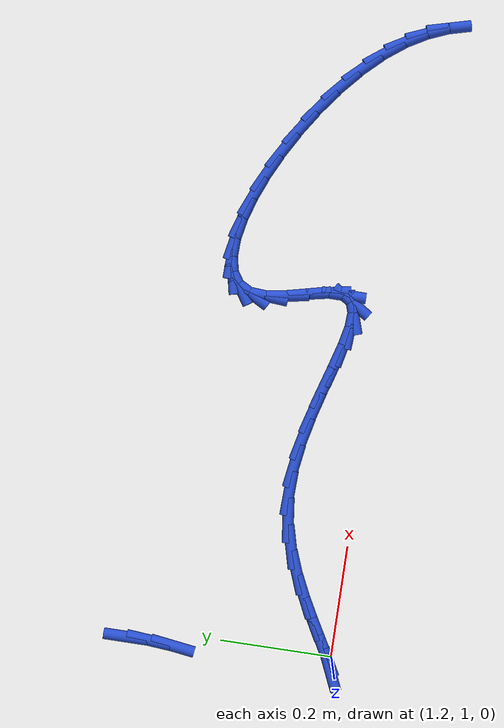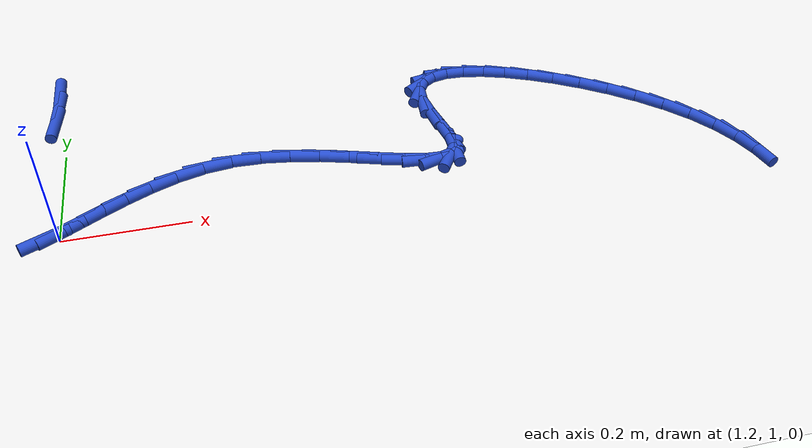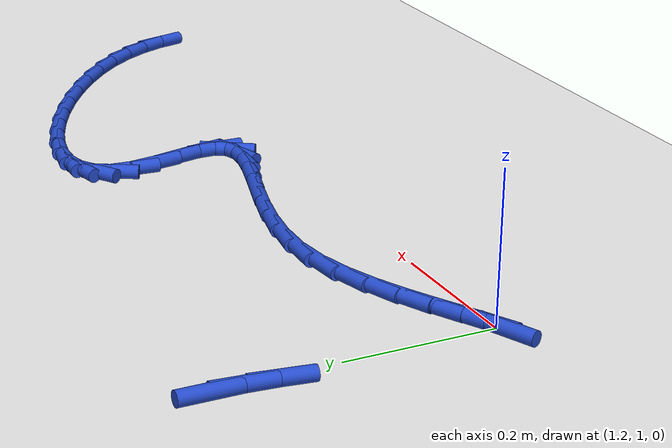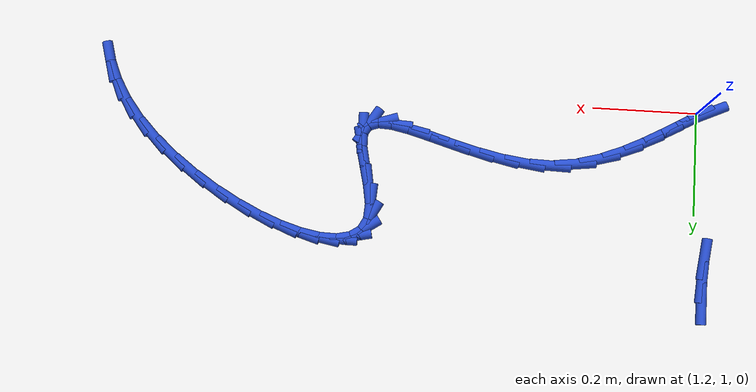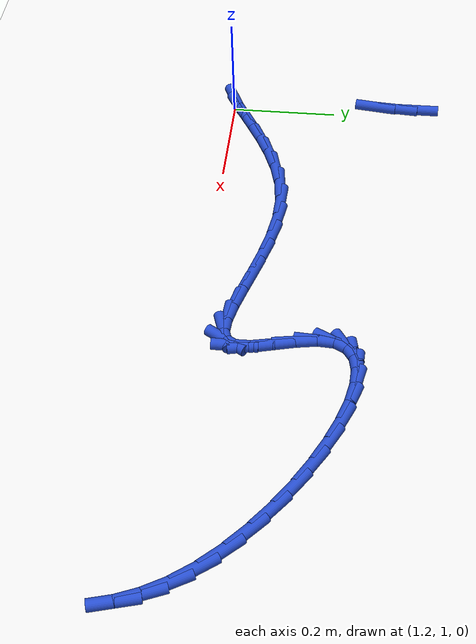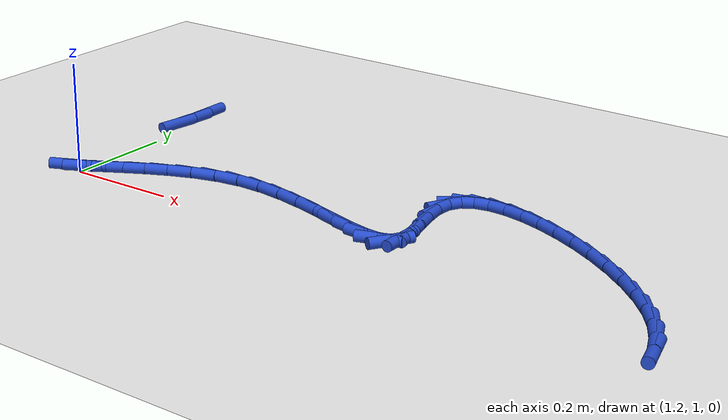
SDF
<sdf version="1.6">
 <world name="default">
  <model name="ground_plane">
   <static>1</static>
   <link name="link">
    <collision name="collision">
     <geometry><plane><normal>0 0 1</normal><size>100 100</size></plane></geometry>
     <surface><friction><ode><mu>100</mu><mu2>50</mu2></ode></friction></surface>
    </collision>
    <visual name="visual">
     <cast_shadows>0</cast_shadows>
     <geometry><plane><normal>0 0 1</normal><size>100 100</size></plane></geometry>
     <material>
      <script><uri>file://media/materials/scripts/gazebo.material</uri><name>Gazebo/WhiteGlow</name></script>
     </material>
    </visual>
   </link>
  </model>
  <model name="line">
   <link name="link_59">
    <pose>1.1833542707400957 1.3675502109636808 0.01 0 1.57 1.5687435442339484</pose>
    <collision name="collision">
     <geometry><cylinder><radius>0.01</radius><length>0.08</length></cylinder></geometry>
    </collision>
    <visual name="visual">
     <material>
      <script><name>Gazebo/Blue</name><uri>file://media/materials/scripts/gazebo.material</uri></script>
     </material>
     <geometry><cylinder><radius>0.01</radius><length>0.08</length></cylinder></geometry>
    </visual>
   </link>
   <link name="link_60">
    <pose>1.1832705447374465 1.3267636772912266 0.01 0 1.57 1.4860865900125153</pose>
    <collision name="collision">
     <geometry><cylinder><radius>0.01</radius><length>0.08</length></cylinder></geometry>
    </collision>
    <visual name="visual">
     <material>
      <script><name>Gazebo/Blue</name><uri>file://media/materials/scripts/gazebo.material</uri></script>
     </material>
     <geometry><cylinder><radius>0.01</radius><length>0.08</length></cylinder></geometry>
    </visual>
   </link>
   <link name="link_61">
    <pose>1.1795605325885823 1.2830717238694571 0.01 0 1.57 1.433139103271464</pose>
    <collision name="collision">
     <geometry><cylinder><radius>0.01</radius><length>0.08</length></cylinder></geometry>
    </collision>
    <visual name="visual">
     <material>
      <script><name>Gazebo/Blue</name><uri>file://media/materials/scripts/gazebo.material</uri></script>
     </material>
     <geometry><cylinder><radius>0.01</radius><length>0.08</length></cylinder></geometry>
    </visual>
   </link>
   <link name="link_71">
    <pose>1.1792217830529335 0.9993016676941432 0.01 0 1.57 0.41999487995042717</pose>
    <collision name="collision">
     <geometry><cylinder><radius>0.01</radius><length>0.08</length></cylinder></geometry>
    </collision>
    <visual name="visual">
     <material>
      <script><name>Gazebo/Blue</name><uri>file://media/materials/scripts/gazebo.material</uri></script>
     </material>
     <geometry><cylinder><radius>0.01</radius><length>0.08</length></cylinder></geometry>
    </visual>
   </link>
   <link name="link_72">
    <pose>1.2028808810101816 1.0098670260185412 0.01 0 1.57 0.5003953882442692</pose>
    <collision name="collision">
     <geometry><cylinder><radius>0.01</radius><length>0.08</length></cylinder></geometry>
    </collision>
    <visual name="visual">
     <material>
      <script><name>Gazebo/Blue</name><uri>file://media/materials/scripts/gazebo.material</uri></script>
     </material>
     <geometry><cylinder><radius>0.01</radius><length>0.08</length></cylinder></geometry>
    </visual>
   </link>
   <link name="link_73">
    <pose>1.2315399144276273 1.0255382437845144 0.01 0 1.57 0.5167305637071714</pose>
    <collision name="collision">
     <geometry><cylinder><radius>0.01</radius><length>0.08</length></cylinder></geometry>
    </collision>
    <visual name="visual">
     <material>
      <script><name>Gazebo/Blue</name><uri>file://media/materials/scripts/gazebo.material</uri></script>
     </material>
     <geometry><cylinder><radius>0.01</radius><length>0.08</length></cylinder></geometry>
    </visual>
   </link>
   <link name="link_74">
    <pose>1.2646926836332768 1.0443765980793738 0.01 0 1.57 0.4953626063585196</pose>
    <collision name="collision">
     <geometry><cylinder><radius>0.01</radius><length>0.08</length></cylinder></geometry>
    </collision>
    <visual name="visual">
     <material>
      <script><name>Gazebo/Blue</name><uri>file://media/materials/scripts/gazebo.material</uri></script>
     </material>
     <geometry><cylinder><radius>0.01</radius><length>0.08</length></cylinder></geometry>
    </visual>
   </link>
   <link name="link_75">
    <pose>1.3018329889551352 1.0644433659904284 0.01 0 1.57 0.44467643170085613</pose>
    <collision name="collision">
     <geometry><cylinder><radius>0.01</radius><length>0.08</length></cylinder></geometry>
    </collision>
    <visual name="visual">
     <material>
      <script><name>Gazebo/Blue</name><uri>file://media/materials/scripts/gazebo.material</uri></script>
     </material>
     <geometry><cylinder><radius>0.01</radius><length>0.08</length></cylinder></geometry>
    </visual>
   </link>
   <link name="link_76">
    <pose>1.3424546307212075 1.0837998246049887 0.01 0 1.57 0.3659630775760741</pose>
    <collision name="collision">
     <geometry><cylinder><radius>0.01</radius><length>0.08</length></cylinder></geometry>
    </collision>
    <visual name="visual">
     <material>
      <script><name>Gazebo/Blue</name><uri>file://media/materials/scripts/gazebo.material</uri></script>
     </material>
     <geometry><cylinder><radius>0.01</radius><length>0.08</length></cylinder></geometry>
    </visual>
   </link>
   <link name="link_77">
    <pose>1.3860514092594995 1.1005072510103648 0.01 0 1.57 0.25726513294996456</pose>
    <collision name="collision">
     <geometry><cylinder><radius>0.01</radius><length>0.08</length></cylinder></geometry>
    </collision>
    <visual name="visual">
     <material>
      <script><name>Gazebo/Blue</name><uri>file://media/materials/scripts/gazebo.material</uri></script>
     </material>
     <geometry><cylinder><radius>0.01</radius><length>0.08</length></cylinder></geometry>
    </visual>
   </link>
   <link name="link_78">
    <pose>1.4321171248980162 1.1126269222938658 0.01 0 1.57 0.11614313005797457</pose>
    <collision name="collision">
     <geometry><cylinder><radius>0.01</radius><length>0.08</length></cylinder></geometry>
    </collision>
    <visual name="visual">
     <material>
      <script><name>Gazebo/Blue</name><uri>file://media/materials/scripts/gazebo.material</uri></script>
     </material>
     <geometry><cylinder><radius>0.01</radius><length>0.08</length></cylinder></geometry>
    </visual>
   </link>
   <link name="link_79">
    <pose>1.4801439257995148 1.1182301222411746 0.01 0 1.57 -0.033196139831334286</pose>
    <collision name="collision">
     <geometry><cylinder><radius>0.01</radius><length>0.08</length></cylinder></geometry>
    </collision>
    <visual name="visual">
     <material>
      <script><name>Gazebo/Blue</name><uri>file://media/materials/scripts/gazebo.material</uri></script>
     </material>
     <geometry><cylinder><radius>0.01</radius><length>0.08</length></cylinder></geometry>
    </visual>
   </link>
   <link name="link_80">
    <pose>1.5294249336474692 1.1165935818225015 0.01 0 1.57 -0.14582118160427973</pose>
    <collision name="collision">
     <geometry><cylinder><radius>0.01</radius><length>0.08</length></cylinder></geometry>
    </collision>
    <visual name="visual">
     <material>
      <script><name>Gazebo/Blue</name><uri>file://media/materials/scripts/gazebo.material</uri></script>
     </material>
     <geometry><cylinder><radius>0.01</radius><length>0.08</length></cylinder></geometry>
    </visual>
   </link>
   <link name="link_81">
    <pose>1.5788672064581106 1.109332310625039 0.01 0 1.57 -0.22323469884871947</pose>
    <collision name="collision">
     <geometry><cylinder><radius>0.01</radius><length>0.08</length></cylinder></geometry>
    </collision>
    <visual name="visual">
     <material>
      <script><name>Gazebo/Blue</name><uri>file://media/materials/scripts/gazebo.material</uri></script>
     </material>
     <geometry><cylinder><radius>0.01</radius><length>0.08</length></cylinder></geometry>
    </visual>
   </link>
   <link name="link_82">
    <pose>1.627333512267396 1.0983295701400206 0.01 0 1.57 -0.2706481111614177</pose>
    <collision name="collision">
     <geometry><cylinder><radius>0.01</radius><length>0.08</length></cylinder></geometry>
    </collision>
    <visual name="visual">
     <material>
      <script><name>Gazebo/Blue</name><uri>file://media/materials/scripts/gazebo.material</uri></script>
     </material>
     <geometry><cylinder><radius>0.01</radius><length>0.08</length></cylinder></geometry>
    </visual>
   </link>
   <link name="link_83">
    <pose>1.673686619111285 1.085468621858681 0.01 0 1.57 -0.2894354718659591</pose>
    <collision name="collision">
     <geometry><cylinder><radius>0.01</radius><length>0.08</length></cylinder></geometry>
    </collision>
    <visual name="visual">
     <material>
      <script><name>Gazebo/Blue</name><uri>file://media/materials/scripts/gazebo.material</uri></script>
     </material>
     <geometry><cylinder><radius>0.01</radius><length>0.08</length></cylinder></geometry>
    </visual>
   </link>
   <link name="link_84">
    <pose>1.7167892950257353 1.072632727272254 0.01 0 1.57 -0.2751002932898341</pose>
    <collision name="collision">
     <geometry><cylinder><radius>0.01</radius><length>0.08</length></cylinder></geometry>
    </collision>
    <visual name="visual">
     <material>
      <script><name>Gazebo/Blue</name><uri>file://media/materials/scripts/gazebo.material</uri></script>
     </material>
     <geometry><cylinder><radius>0.01</radius><length>0.08</length></cylinder></geometry>
    </visual>
   </link>
   <link name="link_85">
    <pose>1.7555043080467057 1.0617051478719732 0.01 0 1.57 -0.2117798265458431</pose>
    <collision name="collision">
     <geometry><cylinder><radius>0.01</radius><length>0.08</length></cylinder></geometry>
    </collision>
    <visual name="visual">
     <material>
      <script><name>Gazebo/Blue</name><uri>file://media/materials/scripts/gazebo.material</uri></script>
     </material>
     <geometry><cylinder><radius>0.01</radius><length>0.08</length></cylinder></geometry>
    </visual>
   </link>
   <link name="link_86">
    <pose>1.7886944262101536 1.0545691451490733 0.01 0 1.57 -0.05502450538432444</pose>
    <collision name="collision">
     <geometry><cylinder><radius>0.01</radius><length>0.08</length></cylinder></geometry>
    </collision>
    <visual name="visual">
     <material>
      <script><name>Gazebo/Blue</name><uri>file://media/materials/scripts/gazebo.material</uri></script>
     </material>
     <geometry><cylinder><radius>0.01</radius><length>0.08</length></cylinder></geometry>
    </visual>
   </link>
   <link name="link_87">
    <pose>1.8152224175520382 1.0531079805947876 0.01 0 1.57 0.31472100855886515</pose>
    <collision name="collision">
     <geometry><cylinder><radius>0.01</radius><length>0.08</length></cylinder></geometry>
    </collision>
    <visual name="visual">
     <material>
      <script><name>Gazebo/Blue</name><uri>file://media/materials/scripts/gazebo.material</uri></script>
     </material>
     <geometry><cylinder><radius>0.01</radius><length>0.08</length></cylinder></geometry>
    </visual>
   </link>
   <link name="link_88">
    <pose>1.833951050108317 1.05920491570035 0.01 0 1.57 1.0084752885668766</pose>
    <collision name="collision">
     <geometry><cylinder><radius>0.01</radius><length>0.08</length></cylinder></geometry>
    </collision>
    <visual name="visual">
     <material>
      <script><name>Gazebo/Blue</name><uri>file://media/materials/scripts/gazebo.material</uri></script>
     </material>
     <geometry><cylinder><radius>0.01</radius><length>0.08</length></cylinder></geometry>
    </visual>
   </link>
   <link name="link_89">
    <pose>1.8437430919149496 1.0747432119569953 0.01 0 1.57 -1.570244699357077</pose>
    <collision name="collision">
     <geometry><cylinder><radius>0.01</radius><length>0.08</length></cylinder></geometry>
    </collision>
    <visual name="visual">
     <material>
      <script><name>Gazebo/Blue</name><uri>file://media/materials/scripts/gazebo.material</uri></script>
     </material>
     <geometry><cylinder><radius>0.01</radius><length>0.08</length></cylinder></geometry>
    </visual>
   </link>
   <link name="link_90">
    <pose>1.8437284400649254 1.1013043427736537 0.01 0 1.57 -1.3699065568556508</pose>
    <collision name="collision">
     <geometry><cylinder><radius>0.01</radius><length>0.08</length></cylinder></geometry>
    </collision>
    <visual name="visual">
     <material>
      <script><name>Gazebo/Blue</name><uri>file://media/materials/scripts/gazebo.material</uri></script>
     </material>
     <geometry><cylinder><radius>0.01</radius><length>0.08</length></cylinder></geometry>
    </visual>
   </link>
   <link name="link_91">
    <pose>1.8365644429345256 1.1364846562792463 0.01 0 1.57 -1.337619118816288</pose>
    <collision name="collision">
     <geometry><cylinder><radius>0.01</radius><length>0.08</length></cylinder></geometry>
    </collision>
    <visual name="visual">
     <material>
      <script><name>Gazebo/Blue</name><uri>file://media/materials/scripts/gazebo.material</uri></script>
     </material>
     <geometry><cylinder><radius>0.01</radius><length>0.08</length></cylinder></geometry>
    </visual>
   </link>
   <link name="link_92">
    <pose>1.8274021259321707 1.1750632780295514 0.01 0 1.57 -1.409867639404159</pose>
    <collision name="collision">
     <geometry><cylinder><radius>0.01</radius><length>0.08</length></cylinder></geometry>
    </collision>
    <visual name="visual">
     <material>
      <script><name>Gazebo/Blue</name><uri>file://media/materials/scripts/gazebo.material</uri></script>
     </material>
     <geometry><cylinder><radius>0.01</radius><length>0.08</length></cylinder></geometry>
    </visual>
   </link>
   <link name="link_93">
    <pose>1.8214450611518227 1.211759969153138 0.01 0 1.57 1.4981029156011794</pose>
    <collision name="collision">
     <geometry><cylinder><radius>0.01</radius><length>0.08</length></cylinder></geometry>
    </collision>
    <visual name="visual">
     <material>
      <script><name>Gazebo/Blue</name><uri>file://media/materials/scripts/gazebo.material</uri></script>
     </material>
     <geometry><cylinder><radius>0.01</radius><length>0.08</length></cylinder></geometry>
    </visual>
   </link>
   <link name="link_94">
    <pose>1.823614747900868 1.2415544661330131 0.01 0 1.57 1.0688806396478794</pose>
    <collision name="collision">
     <geometry><cylinder><radius>0.01</radius><length>0.08</length></cylinder></geometry>
    </collision>
    <visual name="visual">
     <material>
      <script><name>Gazebo/Blue</name><uri>file://media/materials/scripts/gazebo.material</uri></script>
     </material>
     <geometry><cylinder><radius>0.01</radius><length>0.08</length></cylinder></geometry>
    </visual>
   </link>
   <link name="link_95">
    <pose>1.835239980798698 1.2627377595649472 0.01 0 1.57 0.5829889249186541</pose>
    <collision name="collision">
     <geometry><cylinder><radius>0.01</radius><length>0.08</length></cylinder></geometry>
    </collision>
    <visual name="visual">
     <material>
      <script><name>Gazebo/Blue</name><uri>file://media/materials/scripts/gazebo.material</uri></script>
     </material>
     <geometry><cylinder><radius>0.01</radius><length>0.08</length></cylinder></geometry>
    </visual>
   </link>
   <link name="link_96">
    <pose>1.8551735175851796 1.2758829055114531 0.01 0 1.57 0.2086075971744396</pose>
    <collision name="collision">
     <geometry><cylinder><radius>0.01</radius><length>0.08</length></cylinder></geometry>
    </collision>
    <visual name="visual">
     <material>
      <script><name>Gazebo/Blue</name><uri>file://media/materials/scripts/gazebo.material</uri></script>
     </material>
     <geometry><cylinder><radius>0.01</radius><length>0.08</length></cylinder></geometry>
    </visual>
   </link>
   <link name="link_97">
    <pose>1.8822191234600614 1.2816081145256175 0.01 0 1.57 -0.032648295764393986</pose>
    <collision name="collision">
     <geometry><cylinder><radius>0.01</radius><length>0.08</length></cylinder></geometry>
    </collision>
    <visual name="visual">
     <material>
      <script><name>Gazebo/Blue</name><uri>file://media/materials/scripts/gazebo.material</uri></script>
     </material>
     <geometry><cylinder><radius>0.01</radius><length>0.08</length></cylinder></geometry>
    </visual>
   </link>
   <link name="link_98">
    <pose>1.915180563623089 1.2805315971605271 0.01 0 1.57 -0.19033834912369366</pose>
    <collision name="collision">
     <geometry><cylinder><radius>0.01</radius><length>0.08</length></cylinder></geometry>
    </collision>
    <visual name="visual">
     <material>
      <script><name>Gazebo/Blue</name><uri>file://media/materials/scripts/gazebo.material</uri></script>
     </material>
     <geometry><cylinder><radius>0.01</radius><length>0.08</length></cylinder></geometry>
    </visual>
   </link>
   <link name="link_99">
    <pose>1.9528616032740107 1.2732715639692678 0.01 0 1.57 -0.3017560197152243</pose>
    <collision name="collision">
     <geometry><cylinder><radius>0.01</radius><length>0.08</length></cylinder></geometry>
    </collision>
    <visual name="visual">
     <material>
      <script><name>Gazebo/Blue</name><uri>file://media/materials/scripts/gazebo.material</uri></script>
     </material>
     <geometry><cylinder><radius>0.01</radius><length>0.08</length></cylinder></geometry>
    </visual>
   </link>
   <link name="link_100">
    <pose>1.9940660076125736 1.260446225504927 0.01 0 1.57 -0.3876116265774691</pose>
    <collision name="collision">
     <geometry><cylinder><radius>0.01</radius><length>0.08</length></cylinder></geometry>
    </collision>
    <visual name="visual">
     <material>
      <script><name>Gazebo/Blue</name><uri>file://media/materials/scripts/gazebo.material</uri></script>
     </material>
     <geometry><cylinder><radius>0.01</radius><length>0.08</length></cylinder></geometry>
    </visual>
   </link>
   <link name="link_101">
    <pose>2.037597541838525 1.2426737923205904 0.01 0 1.57 -0.4595211818228255</pose>
    <collision name="collision">
     <geometry><cylinder><radius>0.01</radius><length>0.08</length></cylinder></geometry>
    </collision>
    <visual name="visual">
     <material>
      <script><name>Gazebo/Blue</name><uri>file://media/materials/scripts/gazebo.material</uri></script>
     </material>
     <geometry><cylinder><radius>0.01</radius><length>0.08</length></cylinder></geometry>
    </visual>
   </link>
   <link name="link_102">
    <pose>2.0822599711516125 1.2205724749693452 0.01 0 1.57 -0.52467187864082</pose>
    <collision name="collision">
     <geometry><cylinder><radius>0.01</radius><length>0.08</length></cylinder></geometry>
    </collision>
    <visual name="visual">
     <material>
      <script><name>Gazebo/Blue</name><uri>file://media/materials/scripts/gazebo.material</uri></script>
     </material>
     <geometry><cylinder><radius>0.01</radius><length>0.08</length></cylinder></geometry>
    </visual>
   </link>
   <link name="link_103">
    <pose>2.1268570607515835 1.1947604840042778 0.01 0 1.57 -0.5882279944977992</pose>
    <collision name="collision">
     <geometry><cylinder><radius>0.01</radius><length>0.08</length></cylinder></geometry>
    </collision>
    <visual name="visual">
     <material>
      <script><name>Gazebo/Blue</name><uri>file://media/materials/scripts/gazebo.material</uri></script>
     </material>
     <geometry><cylinder><radius>0.01</radius><length>0.08</length></cylinder></geometry>
    </visual>
   </link>
   <link name="link_104">
    <pose>2.1701925758381853 1.1658560299784744 0.01 0 1.57 -0.6546853620527718</pose>
    <collision name="collision">
     <geometry><cylinder><radius>0.01</radius><length>0.08</length></cylinder></geometry>
    </collision>
    <visual name="visual">
     <material>
      <script><name>Gazebo/Blue</name><uri>file://media/materials/scripts/gazebo.material</uri></script>
     </material>
     <geometry><cylinder><radius>0.01</radius><length>0.08</length></cylinder></geometry>
    </visual>
   </link>
   <link name="link_105">
    <pose>2.211070281611163 1.134477323445022 0.01 0 1.57 -0.7288448051973511</pose>
    <collision name="collision">
     <geometry><cylinder><radius>0.01</radius><length>0.08</length></cylinder></geometry>
    </collision>
    <visual name="visual">
     <material>
      <script><name>Gazebo/Blue</name><uri>file://media/materials/scripts/gazebo.material</uri></script>
     </material>
     <geometry><cylinder><radius>0.01</radius><length>0.08</length></cylinder></geometry>
    </visual>
   </link>
   <link name="link_106">
    <pose>2.248293943270268 1.1012425749570067 0.01 0 1.57 -0.816791345691753</pose>
    <collision name="collision">
     <geometry><cylinder><radius>0.01</radius><length>0.08</length></cylinder></geometry>
    </collision>
    <visual name="visual">
     <material>
      <script><name>Gazebo/Blue</name><uri>file://media/materials/scripts/gazebo.material</uri></script>
     </material>
     <geometry><cylinder><radius>0.01</radius><length>0.08</length></cylinder></geometry>
    </visual>
   </link>
   <link name="link_107">
    <pose>2.280667326015245 1.0667699950675151 0.01 0 1.57 -0.9254713637853568</pose>
    <collision name="collision">
     <geometry><cylinder><radius>0.01</radius><length>0.08</length></cylinder></geometry>
    </collision>
    <visual name="visual">
     <material>
      <script><name>Gazebo/Blue</name><uri>file://media/materials/scripts/gazebo.material</uri></script>
     </material>
     <geometry><cylinder><radius>0.01</radius><length>0.08</length></cylinder></geometry>
    </visual>
   </link>
   <link name="link_108">
    <pose>2.3071170956348315 1.0316373121027334 0.01 0 1.57 -1.0488157903765256</pose>
    <collision name="collision">
     <geometry><cylinder><radius>0.01</radius><length>0.08</length></cylinder></geometry>
    </collision>
    <visual name="visual">
     <material>
      <script><name>Gazebo/Blue</name><uri>file://media/materials/scripts/gazebo.material</uri></script>
     </material>
     <geometry><cylinder><radius>0.01</radius><length>0.08</length></cylinder></geometry>
    </visual>
   </link>
   <link name="link_109">
    <pose>2.3275602368549584 0.9960960532188768 0.01 0 1.57 -1.1785816108624227</pose>
    <collision name="collision">
     <geometry><cylinder><radius>0.01</radius><length>0.08</length></cylinder></geometry>
    </collision>
    <visual name="visual">
     <material>
      <script><name>Gazebo/Blue</name><uri>file://media/materials/scripts/gazebo.material</uri></script>
     </material>
     <geometry><cylinder><radius>0.01</radius><length>0.08</length></cylinder></geometry>
    </visual>
   </link>
   <link name="link_110">
    <pose>2.342391850094616 0.9602402590366588 0.01 0 1.57 -1.3102543650689982</pose>
    <collision name="collision">
     <geometry><cylinder><radius>0.01</radius><length>0.08</length></cylinder></geometry>
    </collision>
    <visual name="visual">
     <material>
      <script><name>Gazebo/Blue</name><uri>file://media/materials/scripts/gazebo.material</uri></script>
     </material>
     <geometry><cylinder><radius>0.01</radius><length>0.08</length></cylinder></geometry>
    </visual>
   </link>
  </model>
 </world>
</sdf>
